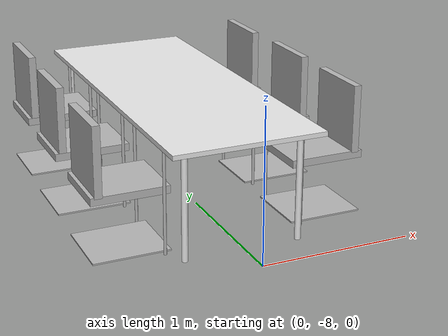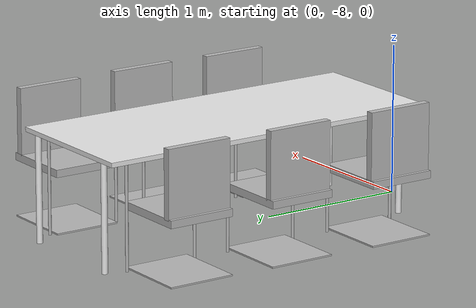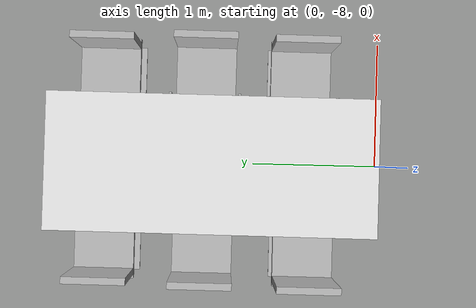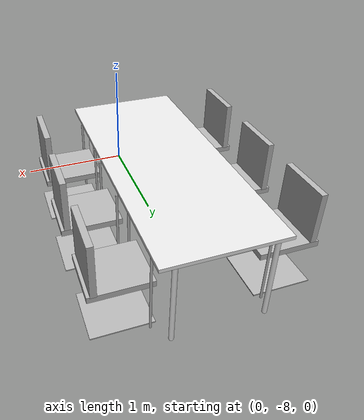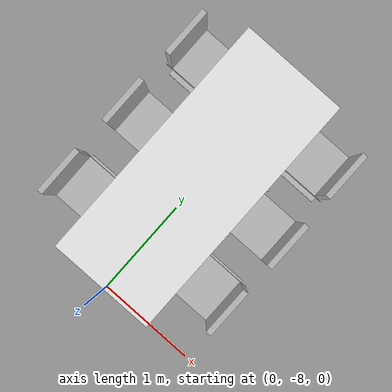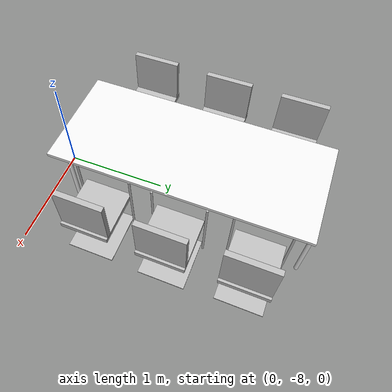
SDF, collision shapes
<sdf version="1.6">
 <model name="erica">
  <model name="table1_chair_tv_clone_clone">
   <model name="h_chair">
    <link name="link_0">
     <inertial>
      <mass>1</mass>
      <inertia>
       <ixx>0.166667</ixx>
       <ixy>0</ixy>
       <ixz>0</ixz>
       <iyy>0.166667</iyy>
       <iyz>0</iyz>
       <izz>0.166667</izz>
      </inertia>
     </inertial>
     <visual name="visual">
      <geometry>
       <mesh><uri>model://erica/elements/h_chair/meshes/chair.dae</uri><scale>1 1 1</scale></mesh>
      </geometry>
     </visual>
     <collision name="collision_4">
      <pose>0 0 0.41 0 -0 0</pose>
      <geometry><box><size>0.5 0.45 0.05</size></box></geometry>
      <surface>
       <friction>
        <ode><mu>1</mu><mu2>1</mu2><fdir1>0 0 0</fdir1><slip1>0</slip1><slip2>0</slip2></ode>
        <torsional>
         <coefficient>1</coefficient>
         <patch_radius>0</patch_radius>
         <surface_radius>0</surface_radius>
         <use_patch_radius>1</use_patch_radius>
         <ode><slip>0</slip></ode>
        </torsional>
       </friction>
       <bounce><restitution_coefficient>0</restitution_coefficient><threshold>1e+06</threshold></bounce>
       <contact>
        <collide_without_contact>0</collide_without_contact>
        <collide_without_contact_bitmask>1</collide_without_contact_bitmask>
        <collide_bitmask>1</collide_bitmask>
        <ode>
         <soft_cfm>0</soft_cfm>
         <soft_erp>0.2</soft_erp>
         <kp>1e+13</kp>
         <kd>1</kd>
         <max_vel>0.01</max_vel>
         <min_depth>0</min_depth>
        </ode>
        <bullet>
         <split_impulse>1</split_impulse>
         <split_impulse_penetration_threshold>-0.01</split_impulse_penetration_threshold>
         <soft_cfm>0</soft_cfm>
         <soft_erp>0.2</soft_erp>
         <kp>1e+13</kp>
         <kd>1</kd>
        </bullet>
       </contact>
      </surface>
     </collision>
     <collision name="collision_3">
      <pose>0 0 0.01 0 -0 0</pose>
      <geometry><box><size>0.5 0.45 0.01</size></box></geometry>
      <surface>
       <friction>
        <ode><mu>1</mu><mu2>1</mu2><fdir1>0 0 0</fdir1><slip1>0</slip1><slip2>0</slip2></ode>
        <torsional>
         <coefficient>1</coefficient>
         <patch_radius>0</patch_radius>
         <surface_radius>0</surface_radius>
         <use_patch_radius>1</use_patch_radius>
         <ode><slip>0</slip></ode>
        </torsional>
       </friction>
       <bounce><restitution_coefficient>0</restitution_coefficient><threshold>1e+06</threshold></bounce>
       <contact>
        <collide_without_contact>0</collide_without_contact>
        <collide_without_contact_bitmask>1</collide_without_contact_bitmask>
        <collide_bitmask>1</collide_bitmask>
        <ode>
         <soft_cfm>0</soft_cfm>
         <soft_erp>0.2</soft_erp>
         <kp>1e+13</kp>
         <kd>1</kd>
         <max_vel>0.01</max_vel>
         <min_depth>0</min_depth>
        </ode>
        <bullet>
         <split_impulse>1</split_impulse>
         <split_impulse_penetration_threshold>-0.01</split_impulse_penetration_threshold>
         <soft_cfm>0</soft_cfm>
         <soft_erp>0.2</soft_erp>
         <kp>1e+13</kp>
         <kd>1</kd>
        </bullet>
       </contact>
      </surface>
     </collision>
     <collision name="collision_5">
      <pose>-0.2 0 0.65 0 -0 0</pose>
      <geometry><box><size>0.05 0.45 0.45</size></box></geometry>
      <surface>
       <friction>
        <ode><mu>1</mu><mu2>1</mu2><fdir1>0 0 0</fdir1><slip1>0</slip1><slip2>0</slip2></ode>
        <torsional>
         <coefficient>1</coefficient>
         <patch_radius>0</patch_radius>
         <surface_radius>0</surface_radius>
         <use_patch_radius>1</use_patch_radius>
         <ode><slip>0</slip></ode>
        </torsional>
       </friction>
       <bounce><restitution_coefficient>0</restitution_coefficient><threshold>1e+06</threshold></bounce>
       <contact>
        <collide_without_contact>0</collide_without_contact>
        <collide_without_contact_bitmask>1</collide_without_contact_bitmask>
        <collide_bitmask>1</collide_bitmask>
        <ode>
         <soft_cfm>0</soft_cfm>
         <soft_erp>0.2</soft_erp>
         <kp>1e+13</kp>
         <kd>1</kd>
         <max_vel>0.01</max_vel>
         <min_depth>0</min_depth>
        </ode>
        <bullet>
         <split_impulse>1</split_impulse>
         <split_impulse_penetration_threshold>-0.01</split_impulse_penetration_threshold>
         <soft_cfm>0</soft_cfm>
         <soft_erp>0.2</soft_erp>
         <kp>1e+13</kp>
         <kd>1</kd>
        </bullet>
       </contact>
      </surface>
     </collision>
     <collision name="collision_6">
      <pose>0.2 -0.25 0.35 0 -0 0</pose>
      <geometry><cylinder><radius>0.01</radius><length>0.7</length></cylinder></geometry>
      <surface>
       <friction>
        <ode><mu>1</mu><mu2>1</mu2><fdir1>0 0 0</fdir1><slip1>0</slip1><slip2>0</slip2></ode>
        <torsional>
         <coefficient>1</coefficient>
         <patch_radius>0</patch_radius>
         <surface_radius>0</surface_radius>
         <use_patch_radius>1</use_patch_radius>
         <ode><slip>0</slip></ode>
        </torsional>
       </friction>
       <bounce><restitution_coefficient>0</restitution_coefficient><threshold>1e+06</threshold></bounce>
       <contact>
        <collide_without_contact>0</collide_without_contact>
        <collide_without_contact_bitmask>1</collide_without_contact_bitmask>
        <collide_bitmask>1</collide_bitmask>
        <ode>
         <soft_cfm>0</soft_cfm>
         <soft_erp>0.2</soft_erp>
         <kp>1e+13</kp>
         <kd>1</kd>
         <max_vel>0.01</max_vel>
         <min_depth>0</min_depth>
        </ode>
        <bullet>
         <split_impulse>1</split_impulse>
         <split_impulse_penetration_threshold>-0.01</split_impulse_penetration_threshold>
         <soft_cfm>0</soft_cfm>
         <soft_erp>0.2</soft_erp>
         <kp>1e+13</kp>
         <kd>1</kd>
        </bullet>
       </contact>
      </surface>
     </collision>
     <collision name="collision_7">
      <pose>0.2 0.25 0.35 0 -0 0</pose>
      <geometry><cylinder><radius>0.01</radius><length>0.7</length></cylinder></geometry>
      <surface>
       <friction>
        <ode><mu>1</mu><mu2>1</mu2><fdir1>0 0 0</fdir1><slip1>0</slip1><slip2>0</slip2></ode>
        <torsional>
         <coefficient>1</coefficient>
         <patch_radius>0</patch_radius>
         <surface_radius>0</surface_radius>
         <use_patch_radius>1</use_patch_radius>
         <ode><slip>0</slip></ode>
        </torsional>
       </friction>
       <bounce><restitution_coefficient>0</restitution_coefficient><threshold>1e+06</threshold></bounce>
       <contact>
        <collide_without_contact>0</collide_without_contact>
        <collide_without_contact_bitmask>1</collide_without_contact_bitmask>
        <collide_bitmask>1</collide_bitmask>
        <ode>
         <soft_cfm>0</soft_cfm>
         <soft_erp>0.2</soft_erp>
         <kp>1e+13</kp>
         <kd>1</kd>
         <max_vel>0.01</max_vel>
         <min_depth>0</min_depth>
        </ode>
        <bullet>
         <split_impulse>1</split_impulse>
         <split_impulse_penetration_threshold>-0.01</split_impulse_penetration_threshold>
         <soft_cfm>0</soft_cfm>
         <soft_erp>0.2</soft_erp>
         <kp>1e+13</kp>
         <kd>1</kd>
        </bullet>
       </contact>
      </surface>
     </collision>
    </link>
    <static>1</static>
    <pose>-0.65015 0.677818 0 0 -0 0</pose>
   </model>
   <model name="h_chair_clone">
    <link name="link_0">
     <inertial>
      <mass>1</mass>
      <inertia>
       <ixx>0.166667</ixx>
       <ixy>0</ixy>
       <ixz>0</ixz>
       <iyy>0.166667</iyy>
       <iyz>0</iyz>
       <izz>0.166667</izz>
      </inertia>
     </inertial>
     <visual name="visual">
      <geometry>
       <mesh><uri>model://erica/elements/h_chair/meshes/chair.dae</uri><scale>1 1 1</scale></mesh>
      </geometry>
     </visual>
     <collision name="collision_4">
      <pose>0 0 0.41 0 -0 0</pose>
      <geometry><box><size>0.5 0.45 0.05</size></box></geometry>
      <surface>
       <friction>
        <ode><mu>1</mu><mu2>1</mu2><fdir1>0 0 0</fdir1><slip1>0</slip1><slip2>0</slip2></ode>
        <torsional>
         <coefficient>1</coefficient>
         <patch_radius>0</patch_radius>
         <surface_radius>0</surface_radius>
         <use_patch_radius>1</use_patch_radius>
         <ode><slip>0</slip></ode>
        </torsional>
       </friction>
       <bounce><restitution_coefficient>0</restitution_coefficient><threshold>1e+06</threshold></bounce>
       <contact>
        <collide_without_contact>0</collide_without_contact>
        <collide_without_contact_bitmask>1</collide_without_contact_bitmask>
        <collide_bitmask>1</collide_bitmask>
        <ode>
         <soft_cfm>0</soft_cfm>
         <soft_erp>0.2</soft_erp>
         <kp>1e+13</kp>
         <kd>1</kd>
         <max_vel>0.01</max_vel>
         <min_depth>0</min_depth>
        </ode>
        <bullet>
         <split_impulse>1</split_impulse>
         <split_impulse_penetration_threshold>-0.01</split_impulse_penetration_threshold>
         <soft_cfm>0</soft_cfm>
         <soft_erp>0.2</soft_erp>
         <kp>1e+13</kp>
         <kd>1</kd>
        </bullet>
       </contact>
      </surface>
     </collision>
     <collision name="collision_3">
      <pose>0 0 0.01 0 -0 0</pose>
      <geometry><box><size>0.5 0.45 0.01</size></box></geometry>
      <surface>
       <friction>
        <ode><mu>1</mu><mu2>1</mu2><fdir1>0 0 0</fdir1><slip1>0</slip1><slip2>0</slip2></ode>
        <torsional>
         <coefficient>1</coefficient>
         <patch_radius>0</patch_radius>
         <surface_radius>0</surface_radius>
         <use_patch_radius>1</use_patch_radius>
         <ode><slip>0</slip></ode>
        </torsional>
       </friction>
       <bounce><restitution_coefficient>0</restitution_coefficient><threshold>1e+06</threshold></bounce>
       <contact>
        <collide_without_contact>0</collide_without_contact>
        <collide_without_contact_bitmask>1</collide_without_contact_bitmask>
        <collide_bitmask>1</collide_bitmask>
        <ode>
         <soft_cfm>0</soft_cfm>
         <soft_erp>0.2</soft_erp>
         <kp>1e+13</kp>
         <kd>1</kd>
         <max_vel>0.01</max_vel>
         <min_depth>0</min_depth>
        </ode>
        <bullet>
         <split_impulse>1</split_impulse>
         <split_impulse_penetration_threshold>-0.01</split_impulse_penetration_threshold>
         <soft_cfm>0</soft_cfm>
         <soft_erp>0.2</soft_erp>
         <kp>1e+13</kp>
         <kd>1</kd>
        </bullet>
       </contact>
      </surface>
     </collision>
     <collision name="collision_5">
      <pose>-0.2 0 0.65 0 -0 0</pose>
      <geometry><box><size>0.05 0.45 0.45</size></box></geometry>
      <surface>
       <friction>
        <ode><mu>1</mu><mu2>1</mu2><fdir1>0 0 0</fdir1><slip1>0</slip1><slip2>0</slip2></ode>
        <torsional>
         <coefficient>1</coefficient>
         <patch_radius>0</patch_radius>
         <surface_radius>0</surface_radius>
         <use_patch_radius>1</use_patch_radius>
         <ode><slip>0</slip></ode>
        </torsional>
       </friction>
       <bounce><restitution_coefficient>0</restitution_coefficient><threshold>1e+06</threshold></bounce>
       <contact>
        <collide_without_contact>0</collide_without_contact>
        <collide_without_contact_bitmask>1</collide_without_contact_bitmask>
        <collide_bitmask>1</collide_bitmask>
        <ode>
         <soft_cfm>0</soft_cfm>
         <soft_erp>0.2</soft_erp>
         <kp>1e+13</kp>
         <kd>1</kd>
         <max_vel>0.01</max_vel>
         <min_depth>0</min_depth>
        </ode>
        <bullet>
         <split_impulse>1</split_impulse>
         <split_impulse_penetration_threshold>-0.01</split_impulse_penetration_threshold>
         <soft_cfm>0</soft_cfm>
         <soft_erp>0.2</soft_erp>
         <kp>1e+13</kp>
         <kd>1</kd>
        </bullet>
       </contact>
      </surface>
     </collision>
     <collision name="collision_6">
      <pose>0.2 -0.25 0.35 0 -0 0</pose>
      <geometry><cylinder><radius>0.01</radius><length>0.7</length></cylinder></geometry>
      <surface>
       <friction>
        <ode><mu>1</mu><mu2>1</mu2><fdir1>0 0 0</fdir1><slip1>0</slip1><slip2>0</slip2></ode>
        <torsional>
         <coefficient>1</coefficient>
         <patch_radius>0</patch_radius>
         <surface_radius>0</surface_radius>
         <use_patch_radius>1</use_patch_radius>
         <ode><slip>0</slip></ode>
        </torsional>
       </friction>
       <bounce><restitution_coefficient>0</restitution_coefficient><threshold>1e+06</threshold></bounce>
       <contact>
        <collide_without_contact>0</collide_without_contact>
        <collide_without_contact_bitmask>1</collide_without_contact_bitmask>
        <collide_bitmask>1</collide_bitmask>
        <ode>
         <soft_cfm>0</soft_cfm>
         <soft_erp>0.2</soft_erp>
         <kp>1e+13</kp>
         <kd>1</kd>
         <max_vel>0.01</max_vel>
         <min_depth>0</min_depth>
        </ode>
        <bullet>
         <split_impulse>1</split_impulse>
         <split_impulse_penetration_threshold>-0.01</split_impulse_penetration_threshold>
         <soft_cfm>0</soft_cfm>
         <soft_erp>0.2</soft_erp>
         <kp>1e+13</kp>
         <kd>1</kd>
        </bullet>
       </contact>
      </surface>
     </collision>
     <collision name="collision_7">
      <pose>0.2 0.25 0.35 0 -0 0</pose>
      <geometry><cylinder><radius>0.01</radius><length>0.7</length></cylinder></geometry>
      <surface>
       <friction>
        <ode><mu>1</mu><mu2>1</mu2><fdir1>0 0 0</fdir1><slip1>0</slip1><slip2>0</slip2></ode>
        <torsional>
         <coefficient>1</coefficient>
         <patch_radius>0</patch_radius>
         <surface_radius>0</surface_radius>
         <use_patch_radius>1</use_patch_radius>
         <ode><slip>0</slip></ode>
        </torsional>
       </friction>
       <bounce><restitution_coefficient>0</restitution_coefficient><threshold>1e+06</threshold></bounce>
       <contact>
        <collide_without_contact>0</collide_without_contact>
        <collide_without_contact_bitmask>1</collide_without_contact_bitmask>
        <collide_bitmask>1</collide_bitmask>
        <ode>
         <soft_cfm>0</soft_cfm>
         <soft_erp>0.2</soft_erp>
         <kp>1e+13</kp>
         <kd>1</kd>
         <max_vel>0.01</max_vel>
         <min_depth>0</min_depth>
        </ode>
        <bullet>
         <split_impulse>1</split_impulse>
         <split_impulse_penetration_threshold>-0.01</split_impulse_penetration_threshold>
         <soft_cfm>0</soft_cfm>
         <soft_erp>0.2</soft_erp>
         <kp>1e+13</kp>
         <kd>1</kd>
        </bullet>
       </contact>
      </surface>
     </collision>
    </link>
    <static>1</static>
    <pose>-0.668032 -0.060178 0 0 -0 0</pose>
   </model>
   <model name="h_chair_clone_0">
    <link name="link_0">
     <inertial>
      <mass>1</mass>
      <inertia>
       <ixx>0.166667</ixx>
       <ixy>0</ixy>
       <ixz>0</ixz>
       <iyy>0.166667</iyy>
       <iyz>0</iyz>
       <izz>0.166667</izz>
      </inertia>
     </inertial>
     <visual name="visual">
      <geometry>
       <mesh><uri>model://erica/elements/h_chair/meshes/chair.dae</uri><scale>1 1 1</scale></mesh>
      </geometry>
     </visual>
     <collision name="collision_4">
      <pose>0 0 0.41 0 -0 0</pose>
      <geometry><box><size>0.5 0.45 0.05</size></box></geometry>
      <surface>
       <friction>
        <ode><mu>1</mu><mu2>1</mu2><fdir1>0 0 0</fdir1><slip1>0</slip1><slip2>0</slip2></ode>
        <torsional>
         <coefficient>1</coefficient>
         <patch_radius>0</patch_radius>
         <surface_radius>0</surface_radius>
         <use_patch_radius>1</use_patch_radius>
         <ode><slip>0</slip></ode>
        </torsional>
       </friction>
       <bounce><restitution_coefficient>0</restitution_coefficient><threshold>1e+06</threshold></bounce>
       <contact>
        <collide_without_contact>0</collide_without_contact>
        <collide_without_contact_bitmask>1</collide_without_contact_bitmask>
        <collide_bitmask>1</collide_bitmask>
        <ode>
         <soft_cfm>0</soft_cfm>
         <soft_erp>0.2</soft_erp>
         <kp>1e+13</kp>
         <kd>1</kd>
         <max_vel>0.01</max_vel>
         <min_depth>0</min_depth>
        </ode>
        <bullet>
         <split_impulse>1</split_impulse>
         <split_impulse_penetration_threshold>-0.01</split_impulse_penetration_threshold>
         <soft_cfm>0</soft_cfm>
         <soft_erp>0.2</soft_erp>
         <kp>1e+13</kp>
         <kd>1</kd>
        </bullet>
       </contact>
      </surface>
     </collision>
     <collision name="collision_3">
      <pose>0 0 0.01 0 -0 0</pose>
      <geometry><box><size>0.5 0.45 0.01</size></box></geometry>
      <surface>
       <friction>
        <ode><mu>1</mu><mu2>1</mu2><fdir1>0 0 0</fdir1><slip1>0</slip1><slip2>0</slip2></ode>
        <torsional>
         <coefficient>1</coefficient>
         <patch_radius>0</patch_radius>
         <surface_radius>0</surface_radius>
         <use_patch_radius>1</use_patch_radius>
         <ode><slip>0</slip></ode>
        </torsional>
       </friction>
       <bounce><restitution_coefficient>0</restitution_coefficient><threshold>1e+06</threshold></bounce>
       <contact>
        <collide_without_contact>0</collide_without_contact>
        <collide_without_contact_bitmask>1</collide_without_contact_bitmask>
        <collide_bitmask>1</collide_bitmask>
        <ode>
         <soft_cfm>0</soft_cfm>
         <soft_erp>0.2</soft_erp>
         <kp>1e+13</kp>
         <kd>1</kd>
         <max_vel>0.01</max_vel>
         <min_depth>0</min_depth>
        </ode>
        <bullet>
         <split_impulse>1</split_impulse>
         <split_impulse_penetration_threshold>-0.01</split_impulse_penetration_threshold>
         <soft_cfm>0</soft_cfm>
         <soft_erp>0.2</soft_erp>
         <kp>1e+13</kp>
         <kd>1</kd>
        </bullet>
       </contact>
      </surface>
     </collision>
     <collision name="collision_5">
      <pose>-0.2 0 0.65 0 -0 0</pose>
      <geometry><box><size>0.05 0.45 0.45</size></box></geometry>
      <surface>
       <friction>
        <ode><mu>1</mu><mu2>1</mu2><fdir1>0 0 0</fdir1><slip1>0</slip1><slip2>0</slip2></ode>
        <torsional>
         <coefficient>1</coefficient>
         <patch_radius>0</patch_radius>
         <surface_radius>0</surface_radius>
         <use_patch_radius>1</use_patch_radius>
         <ode><slip>0</slip></ode>
        </torsional>
       </friction>
       <bounce><restitution_coefficient>0</restitution_coefficient><threshold>1e+06</threshold></bounce>
       <contact>
        <collide_without_contact>0</collide_without_contact>
        <collide_without_contact_bitmask>1</collide_without_contact_bitmask>
        <collide_bitmask>1</collide_bitmask>
        <ode>
         <soft_cfm>0</soft_cfm>
         <soft_erp>0.2</soft_erp>
         <kp>1e+13</kp>
         <kd>1</kd>
         <max_vel>0.01</max_vel>
         <min_depth>0</min_depth>
        </ode>
        <bullet>
         <split_impulse>1</split_impulse>
         <split_impulse_penetration_threshold>-0.01</split_impulse_penetration_threshold>
         <soft_cfm>0</soft_cfm>
         <soft_erp>0.2</soft_erp>
         <kp>1e+13</kp>
         <kd>1</kd>
        </bullet>
       </contact>
      </surface>
     </collision>
     <collision name="collision_6">
      <pose>0.2 -0.25 0.35 0 -0 0</pose>
      <geometry><cylinder><radius>0.01</radius><length>0.7</length></cylinder></geometry>
      <surface>
       <friction>
        <ode><mu>1</mu><mu2>1</mu2><fdir1>0 0 0</fdir1><slip1>0</slip1><slip2>0</slip2></ode>
        <torsional>
         <coefficient>1</coefficient>
         <patch_radius>0</patch_radius>
         <surface_radius>0</surface_radius>
         <use_patch_radius>1</use_patch_radius>
         <ode><slip>0</slip></ode>
        </torsional>
       </friction>
       <bounce><restitution_coefficient>0</restitution_coefficient><threshold>1e+06</threshold></bounce>
       <contact>
        <collide_without_contact>0</collide_without_contact>
        <collide_without_contact_bitmask>1</collide_without_contact_bitmask>
        <collide_bitmask>1</collide_bitmask>
        <ode>
         <soft_cfm>0</soft_cfm>
         <soft_erp>0.2</soft_erp>
         <kp>1e+13</kp>
         <kd>1</kd>
         <max_vel>0.01</max_vel>
         <min_depth>0</min_depth>
        </ode>
        <bullet>
         <split_impulse>1</split_impulse>
         <split_impulse_penetration_threshold>-0.01</split_impulse_penetration_threshold>
         <soft_cfm>0</soft_cfm>
         <soft_erp>0.2</soft_erp>
         <kp>1e+13</kp>
         <kd>1</kd>
        </bullet>
       </contact>
      </surface>
     </collision>
     <collision name="collision_7">
      <pose>0.2 0.25 0.35 0 -0 0</pose>
      <geometry><cylinder><radius>0.01</radius><length>0.7</length></cylinder></geometry>
      <surface>
       <friction>
        <ode><mu>1</mu><mu2>1</mu2><fdir1>0 0 0</fdir1><slip1>0</slip1><slip2>0</slip2></ode>
        <torsional>
         <coefficient>1</coefficient>
         <patch_radius>0</patch_radius>
         <surface_radius>0</surface_radius>
         <use_patch_radius>1</use_patch_radius>
         <ode><slip>0</slip></ode>
        </torsional>
       </friction>
       <bounce><restitution_coefficient>0</restitution_coefficient><threshold>1e+06</threshold></bounce>
       <contact>
        <collide_without_contact>0</collide_without_contact>
        <collide_without_contact_bitmask>1</collide_without_contact_bitmask>
        <collide_bitmask>1</collide_bitmask>
        <ode>
         <soft_cfm>0</soft_cfm>
         <soft_erp>0.2</soft_erp>
         <kp>1e+13</kp>
         <kd>1</kd>
         <max_vel>0.01</max_vel>
         <min_depth>0</min_depth>
        </ode>
        <bullet>
         <split_impulse>1</split_impulse>
         <split_impulse_penetration_threshold>-0.01</split_impulse_penetration_threshold>
         <soft_cfm>0</soft_cfm>
         <soft_erp>0.2</soft_erp>
         <kp>1e+13</kp>
         <kd>1</kd>
        </bullet>
       </contact>
      </surface>
     </collision>
    </link>
    <static>1</static>
    <pose>-0.679941 -0.822301 0 0 -0 0</pose>
   </model>
   <model name="h_chair_clone_1">
    <link name="link_0">
     <inertial>
      <mass>1</mass>
      <inertia>
       <ixx>0.166667</ixx>
       <ixy>0</ixy>
       <ixz>0</ixz>
       <iyy>0.166667</iyy>
       <iyz>0</iyz>
       <izz>0.166667</izz>
      </inertia>
     </inertial>
     <visual name="visual">
      <geometry>
       <mesh><uri>model://erica/elements/h_chair/meshes/chair.dae</uri><scale>1 1 1</scale></mesh>
      </geometry>
     </visual>
     <collision name="collision_4">
      <pose>0 0 0.41 0 -0 0</pose>
      <geometry><box><size>0.5 0.45 0.05</size></box></geometry>
      <surface>
       <friction>
        <ode><mu>1</mu><mu2>1</mu2><fdir1>0 0 0</fdir1><slip1>0</slip1><slip2>0</slip2></ode>
        <torsional>
         <coefficient>1</coefficient>
         <patch_radius>0</patch_radius>
         <surface_radius>0</surface_radius>
         <use_patch_radius>1</use_patch_radius>
         <ode><slip>0</slip></ode>
        </torsional>
       </friction>
       <bounce><restitution_coefficient>0</restitution_coefficient><threshold>1e+06</threshold></bounce>
       <contact>
        <collide_without_contact>0</collide_without_contact>
        <collide_without_contact_bitmask>1</collide_without_contact_bitmask>
        <collide_bitmask>1</collide_bitmask>
        <ode>
         <soft_cfm>0</soft_cfm>
         <soft_erp>0.2</soft_erp>
         <kp>1e+13</kp>
         <kd>1</kd>
         <max_vel>0.01</max_vel>
         <min_depth>0</min_depth>
        </ode>
        <bullet>
         <split_impulse>1</split_impulse>
         <split_impulse_penetration_threshold>-0.01</split_impulse_penetration_threshold>
         <soft_cfm>0</soft_cfm>
         <soft_erp>0.2</soft_erp>
         <kp>1e+13</kp>
         <kd>1</kd>
        </bullet>
       </contact>
      </surface>
     </collision>
     <collision name="collision_3">
      <pose>0 0 0.01 0 -0 0</pose>
      <geometry><box><size>0.5 0.45 0.01</size></box></geometry>
      <surface>
       <friction>
        <ode><mu>1</mu><mu2>1</mu2><fdir1>0 0 0</fdir1><slip1>0</slip1><slip2>0</slip2></ode>
        <torsional>
         <coefficient>1</coefficient>
         <patch_radius>0</patch_radius>
         <surface_radius>0</surface_radius>
         <use_patch_radius>1</use_patch_radius>
         <ode><slip>0</slip></ode>
        </torsional>
       </friction>
       <bounce><restitution_coefficient>0</restitution_coefficient><threshold>1e+06</threshold></bounce>
       <contact>
        <collide_without_contact>0</collide_without_contact>
        <collide_without_contact_bitmask>1</collide_without_contact_bitmask>
        <collide_bitmask>1</collide_bitmask>
        <ode>
         <soft_cfm>0</soft_cfm>
         <soft_erp>0.2</soft_erp>
         <kp>1e+13</kp>
         <kd>1</kd>
         <max_vel>0.01</max_vel>
         <min_depth>0</min_depth>
        </ode>
        <bullet>
         <split_impulse>1</split_impulse>
         <split_impulse_penetration_threshold>-0.01</split_impulse_penetration_threshold>
         <soft_cfm>0</soft_cfm>
         <soft_erp>0.2</soft_erp>
         <kp>1e+13</kp>
         <kd>1</kd>
        </bullet>
       </contact>
      </surface>
     </collision>
     <collision name="collision_5">
      <pose>-0.2 0 0.65 0 -0 0</pose>
      <geometry><box><size>0.05 0.45 0.45</size></box></geometry>
      <surface>
       <friction>
        <ode><mu>1</mu><mu2>1</mu2><fdir1>0 0 0</fdir1><slip1>0</slip1><slip2>0</slip2></ode>
        <torsional>
         <coefficient>1</coefficient>
         <patch_radius>0</patch_radius>
         <surface_radius>0</surface_radius>
         <use_patch_radius>1</use_patch_radius>
         <ode><slip>0</slip></ode>
        </torsional>
       </friction>
       <bounce><restitution_coefficient>0</restitution_coefficient><threshold>1e+06</threshold></bounce>
       <contact>
        <collide_without_contact>0</collide_without_contact>
        <collide_without_contact_bitmask>1</collide_without_contact_bitmask>
        <collide_bitmask>1</collide_bitmask>
        <ode>
         <soft_cfm>0</soft_cfm>
         <soft_erp>0.2</soft_erp>
         <kp>1e+13</kp>
         <kd>1</kd>
         <max_vel>0.01</max_vel>
         <min_depth>0</min_depth>
        </ode>
        <bullet>
         <split_impulse>1</split_impulse>
         <split_impulse_penetration_threshold>-0.01</split_impulse_penetration_threshold>
         <soft_cfm>0</soft_cfm>
         <soft_erp>0.2</soft_erp>
         <kp>1e+13</kp>
         <kd>1</kd>
        </bullet>
       </contact>
      </surface>
     </collision>
     <collision name="collision_6">
      <pose>0.2 -0.25 0.35 0 -0 0</pose>
      <geometry><cylinder><radius>0.01</radius><length>0.7</length></cylinder></geometry>
      <surface>
       <friction>
        <ode><mu>1</mu><mu2>1</mu2><fdir1>0 0 0</fdir1><slip1>0</slip1><slip2>0</slip2></ode>
        <torsional>
         <coefficient>1</coefficient>
         <patch_radius>0</patch_radius>
         <surface_radius>0</surface_radius>
         <use_patch_radius>1</use_patch_radius>
         <ode><slip>0</slip></ode>
        </torsional>
       </friction>
       <bounce><restitution_coefficient>0</restitution_coefficient><threshold>1e+06</threshold></bounce>
       <contact>
        <collide_without_contact>0</collide_without_contact>
        <collide_without_contact_bitmask>1</collide_without_contact_bitmask>
        <collide_bitmask>1</collide_bitmask>
        <ode>
         <soft_cfm>0</soft_cfm>
         <soft_erp>0.2</soft_erp>
         <kp>1e+13</kp>
         <kd>1</kd>
         <max_vel>0.01</max_vel>
         <min_depth>0</min_depth>
        </ode>
        <bullet>
         <split_impulse>1</split_impulse>
         <split_impulse_penetration_threshold>-0.01</split_impulse_penetration_threshold>
         <soft_cfm>0</soft_cfm>
         <soft_erp>0.2</soft_erp>
         <kp>1e+13</kp>
         <kd>1</kd>
        </bullet>
       </contact>
      </surface>
     </collision>
     <collision name="collision_7">
      <pose>0.2 0.25 0.35 0 -0 0</pose>
      <geometry><cylinder><radius>0.01</radius><length>0.7</length></cylinder></geometry>
      <surface>
       <friction>
        <ode><mu>1</mu><mu2>1</mu2><fdir1>0 0 0</fdir1><slip1>0</slip1><slip2>0</slip2></ode>
        <torsional>
         <coefficient>1</coefficient>
         <patch_radius>0</patch_radius>
         <surface_radius>0</surface_radius>
         <use_patch_radius>1</use_patch_radius>
         <ode><slip>0</slip></ode>
        </torsional>
       </friction>
       <bounce><restitution_coefficient>0</restitution_coefficient><threshold>1e+06</threshold></bounce>
       <contact>
        <collide_without_contact>0</collide_without_contact>
        <collide_without_contact_bitmask>1</collide_without_contact_bitmask>
        <collide_bitmask>1</collide_bitmask>
        <ode>
         <soft_cfm>0</soft_cfm>
         <soft_erp>0.2</soft_erp>
         <kp>1e+13</kp>
         <kd>1</kd>
         <max_vel>0.01</max_vel>
         <min_depth>0</min_depth>
        </ode>
        <bullet>
         <split_impulse>1</split_impulse>
         <split_impulse_penetration_threshold>-0.01</split_impulse_penetration_threshold>
         <soft_cfm>0</soft_cfm>
         <soft_erp>0.2</soft_erp>
         <kp>1e+13</kp>
         <kd>1</kd>
        </bullet>
       </contact>
      </surface>
     </collision>
    </link>
    <static>1</static>
    <pose>0.664034 0.665185 0 0 -0 3.13853</pose>
   </model>
   <model name="h_chair_clone_1_clone">
    <link name="link_0">
     <inertial>
      <mass>1</mass>
      <inertia>
       <ixx>0.166667</ixx>
       <ixy>0</ixy>
       <ixz>0</ixz>
       <iyy>0.166667</iyy>
       <iyz>0</iyz>
       <izz>0.166667</izz>
      </inertia>
     </inertial>
     <visual name="visual">
      <geometry>
       <mesh><uri>model://erica/elements/h_chair/meshes/chair.dae</uri><scale>1 1 1</scale></mesh>
      </geometry>
     </visual>
     <collision name="collision_4">
      <pose>0 0 0.41 0 -0 0</pose>
      <geometry><box><size>0.5 0.45 0.05</size></box></geometry>
      <surface>
       <friction>
        <ode><mu>1</mu><mu2>1</mu2><fdir1>0 0 0</fdir1><slip1>0</slip1><slip2>0</slip2></ode>
        <torsional>
         <coefficient>1</coefficient>
         <patch_radius>0</patch_radius>
         <surface_radius>0</surface_radius>
         <use_patch_radius>1</use_patch_radius>
         <ode><slip>0</slip></ode>
        </torsional>
       </friction>
       <bounce><restitution_coefficient>0</restitution_coefficient><threshold>1e+06</threshold></bounce>
       <contact>
        <collide_without_contact>0</collide_without_contact>
        <collide_without_contact_bitmask>1</collide_without_contact_bitmask>
        <collide_bitmask>1</collide_bitmask>
        <ode>
         <soft_cfm>0</soft_cfm>
         <soft_erp>0.2</soft_erp>
         <kp>1e+13</kp>
         <kd>1</kd>
         <max_vel>0.01</max_vel>
         <min_depth>0</min_depth>
        </ode>
        <bullet>
         <split_impulse>1</split_impulse>
         <split_impulse_penetration_threshold>-0.01</split_impulse_penetration_threshold>
         <soft_cfm>0</soft_cfm>
         <soft_erp>0.2</soft_erp>
         <kp>1e+13</kp>
         <kd>1</kd>
        </bullet>
       </contact>
      </surface>
     </collision>
     <collision name="collision_3">
      <pose>0 0 0.01 0 -0 0</pose>
      <geometry><box><size>0.5 0.45 0.01</size></box></geometry>
      <surface>
       <friction>
        <ode><mu>1</mu><mu2>1</mu2><fdir1>0 0 0</fdir1><slip1>0</slip1><slip2>0</slip2></ode>
        <torsional>
         <coefficient>1</coefficient>
         <patch_radius>0</patch_radius>
         <surface_radius>0</surface_radius>
         <use_patch_radius>1</use_patch_radius>
         <ode><slip>0</slip></ode>
        </torsional>
       </friction>
       <bounce><restitution_coefficient>0</restitution_coefficient><threshold>1e+06</threshold></bounce>
       <contact>
        <collide_without_contact>0</collide_without_contact>
        <collide_without_contact_bitmask>1</collide_without_contact_bitmask>
        <collide_bitmask>1</collide_bitmask>
        <ode>
         <soft_cfm>0</soft_cfm>
         <soft_erp>0.2</soft_erp>
         <kp>1e+13</kp>
         <kd>1</kd>
         <max_vel>0.01</max_vel>
         <min_depth>0</min_depth>
        </ode>
        <bullet>
         <split_impulse>1</split_impulse>
         <split_impulse_penetration_threshold>-0.01</split_impulse_penetration_threshold>
         <soft_cfm>0</soft_cfm>
         <soft_erp>0.2</soft_erp>
         <kp>1e+13</kp>
         <kd>1</kd>
        </bullet>
       </contact>
      </surface>
     </collision>
     <collision name="collision_5">
      <pose>-0.2 0 0.65 0 -0 0</pose>
      <geometry><box><size>0.05 0.45 0.45</size></box></geometry>
      <surface>
       <friction>
        <ode><mu>1</mu><mu2>1</mu2><fdir1>0 0 0</fdir1><slip1>0</slip1><slip2>0</slip2></ode>
        <torsional>
         <coefficient>1</coefficient>
         <patch_radius>0</patch_radius>
         <surface_radius>0</surface_radius>
         <use_patch_radius>1</use_patch_radius>
         <ode><slip>0</slip></ode>
        </torsional>
       </friction>
       <bounce><restitution_coefficient>0</restitution_coefficient><threshold>1e+06</threshold></bounce>
       <contact>
        <collide_without_contact>0</collide_without_contact>
        <collide_without_contact_bitmask>1</collide_without_contact_bitmask>
        <collide_bitmask>1</collide_bitmask>
        <ode>
         <soft_cfm>0</soft_cfm>
         <soft_erp>0.2</soft_erp>
         <kp>1e+13</kp>
         <kd>1</kd>
         <max_vel>0.01</max_vel>
         <min_depth>0</min_depth>
        </ode>
        <bullet>
         <split_impulse>1</split_impulse>
         <split_impulse_penetration_threshold>-0.01</split_impulse_penetration_threshold>
         <soft_cfm>0</soft_cfm>
         <soft_erp>0.2</soft_erp>
         <kp>1e+13</kp>
         <kd>1</kd>
        </bullet>
       </contact>
      </surface>
     </collision>
     <collision name="collision_6">
      <pose>0.2 -0.25 0.35 0 -0 0</pose>
      <geometry><cylinder><radius>0.01</radius><length>0.7</length></cylinder></geometry>
      <surface>
       <friction>
        <ode><mu>1</mu><mu2>1</mu2><fdir1>0 0 0</fdir1><slip1>0</slip1><slip2>0</slip2></ode>
        <torsional>
         <coefficient>1</coefficient>
         <patch_radius>0</patch_radius>
         <surface_radius>0</surface_radius>
         <use_patch_radius>1</use_patch_radius>
         <ode><slip>0</slip></ode>
        </torsional>
       </friction>
       <bounce><restitution_coefficient>0</restitution_coefficient><threshold>1e+06</threshold></bounce>
       <contact>
        <collide_without_contact>0</collide_without_contact>
        <collide_without_contact_bitmask>1</collide_without_contact_bitmask>
        <collide_bitmask>1</collide_bitmask>
        <ode>
         <soft_cfm>0</soft_cfm>
         <soft_erp>0.2</soft_erp>
         <kp>1e+13</kp>
         <kd>1</kd>
         <max_vel>0.01</max_vel>
         <min_depth>0</min_depth>
        </ode>
        <bullet>
         <split_impulse>1</split_impulse>
         <split_impulse_penetration_threshold>-0.01</split_impulse_penetration_threshold>
         <soft_cfm>0</soft_cfm>
         <soft_erp>0.2</soft_erp>
         <kp>1e+13</kp>
         <kd>1</kd>
        </bullet>
       </contact>
      </surface>
     </collision>
     <collision name="collision_7">
      <pose>0.2 0.25 0.35 0 -0 0</pose>
      <geometry><cylinder><radius>0.01</radius><length>0.7</length></cylinder></geometry>
      <surface>
       <friction>
        <ode><mu>1</mu><mu2>1</mu2><fdir1>0 0 0</fdir1><slip1>0</slip1><slip2>0</slip2></ode>
        <torsional>
         <coefficient>1</coefficient>
         <patch_radius>0</patch_radius>
         <surface_radius>0</surface_radius>
         <use_patch_radius>1</use_patch_radius>
         <ode><slip>0</slip></ode>
        </torsional>
       </friction>
       <bounce><restitution_coefficient>0</restitution_coefficient><threshold>1e+06</threshold></bounce>
       <contact>
        <collide_without_contact>0</collide_without_contact>
        <collide_without_contact_bitmask>1</collide_without_contact_bitmask>
        <collide_bitmask>1</collide_bitmask>
        <ode>
         <soft_cfm>0</soft_cfm>
         <soft_erp>0.2</soft_erp>
         <kp>1e+13</kp>
         <kd>1</kd>
         <max_vel>0.01</max_vel>
         <min_depth>0</min_depth>
        </ode>
        <bullet>
         <split_impulse>1</split_impulse>
         <split_impulse_penetration_threshold>-0.01</split_impulse_penetration_threshold>
         <soft_cfm>0</soft_cfm>
         <soft_erp>0.2</soft_erp>
         <kp>1e+13</kp>
         <kd>1</kd>
        </bullet>
       </contact>
      </surface>
     </collision>
    </link>
    <static>1</static>
    <pose>0.671484 -0.777358 0 0 -0 3.13853</pose>
   </model>
   <model name="h_chair_clone_1_clone_clone">
    <link name="link_0">
     <inertial>
      <mass>1</mass>
      <inertia>
       <ixx>0.166667</ixx>
       <ixy>0</ixy>
       <ixz>0</ixz>
       <iyy>0.166667</iyy>
       <iyz>0</iyz>
       <izz>0.166667</izz>
      </inertia>
     </inertial>
     <visual name="visual">
      <geometry>
       <mesh><uri>model://erica/elements/h_chair/meshes/chair.dae</uri><scale>1 1 1</scale></mesh>
      </geometry>
     </visual>
     <collision name="collision_4">
      <pose>0 0 0.41 0 -0 0</pose>
      <geometry><box><size>0.5 0.45 0.05</size></box></geometry>
      <surface>
       <friction>
        <ode><mu>1</mu><mu2>1</mu2><fdir1>0 0 0</fdir1><slip1>0</slip1><slip2>0</slip2></ode>
        <torsional>
         <coefficient>1</coefficient>
         <patch_radius>0</patch_radius>
         <surface_radius>0</surface_radius>
         <use_patch_radius>1</use_patch_radius>
         <ode><slip>0</slip></ode>
        </torsional>
       </friction>
       <bounce><restitution_coefficient>0</restitution_coefficient><threshold>1e+06</threshold></bounce>
       <contact>
        <collide_without_contact>0</collide_without_contact>
        <collide_without_contact_bitmask>1</collide_without_contact_bitmask>
        <collide_bitmask>1</collide_bitmask>
        <ode>
         <soft_cfm>0</soft_cfm>
         <soft_erp>0.2</soft_erp>
         <kp>1e+13</kp>
         <kd>1</kd>
         <max_vel>0.01</max_vel>
         <min_depth>0</min_depth>
        </ode>
        <bullet>
         <split_impulse>1</split_impulse>
         <split_impulse_penetration_threshold>-0.01</split_impulse_penetration_threshold>
         <soft_cfm>0</soft_cfm>
         <soft_erp>0.2</soft_erp>
         <kp>1e+13</kp>
         <kd>1</kd>
        </bullet>
       </contact>
      </surface>
     </collision>
     <collision name="collision_3">
      <pose>0 0 0.01 0 -0 0</pose>
      <geometry><box><size>0.5 0.45 0.01</size></box></geometry>
      <surface>
       <friction>
        <ode><mu>1</mu><mu2>1</mu2><fdir1>0 0 0</fdir1><slip1>0</slip1><slip2>0</slip2></ode>
        <torsional>
         <coefficient>1</coefficient>
         <patch_radius>0</patch_radius>
         <surface_radius>0</surface_radius>
         <use_patch_radius>1</use_patch_radius>
         <ode><slip>0</slip></ode>
        </torsional>
       </friction>
       <bounce><restitution_coefficient>0</restitution_coefficient><threshold>1e+06</threshold></bounce>
       <contact>
        <collide_without_contact>0</collide_without_contact>
        <collide_without_contact_bitmask>1</collide_without_contact_bitmask>
        <collide_bitmask>1</collide_bitmask>
        <ode>
         <soft_cfm>0</soft_cfm>
         <soft_erp>0.2</soft_erp>
         <kp>1e+13</kp>
         <kd>1</kd>
         <max_vel>0.01</max_vel>
         <min_depth>0</min_depth>
        </ode>
        <bullet>
         <split_impulse>1</split_impulse>
         <split_impulse_penetration_threshold>-0.01</split_impulse_penetration_threshold>
         <soft_cfm>0</soft_cfm>
         <soft_erp>0.2</soft_erp>
         <kp>1e+13</kp>
         <kd>1</kd>
        </bullet>
       </contact>
      </surface>
     </collision>
     <collision name="collision_5">
      <pose>-0.2 0 0.65 0 -0 0</pose>
      <geometry><box><size>0.05 0.45 0.45</size></box></geometry>
      <surface>
       <friction>
        <ode><mu>1</mu><mu2>1</mu2><fdir1>0 0 0</fdir1><slip1>0</slip1><slip2>0</slip2></ode>
        <torsional>
         <coefficient>1</coefficient>
         <patch_radius>0</patch_radius>
         <surface_radius>0</surface_radius>
         <use_patch_radius>1</use_patch_radius>
         <ode><slip>0</slip></ode>
        </torsional>
       </friction>
       <bounce><restitution_coefficient>0</restitution_coefficient><threshold>1e+06</threshold></bounce>
       <contact>
        <collide_without_contact>0</collide_without_contact>
        <collide_without_contact_bitmask>1</collide_without_contact_bitmask>
        <collide_bitmask>1</collide_bitmask>
        <ode>
         <soft_cfm>0</soft_cfm>
         <soft_erp>0.2</soft_erp>
         <kp>1e+13</kp>
         <kd>1</kd>
         <max_vel>0.01</max_vel>
         <min_depth>0</min_depth>
        </ode>
        <bullet>
         <split_impulse>1</split_impulse>
         <split_impulse_penetration_threshold>-0.01</split_impulse_penetration_threshold>
         <soft_cfm>0</soft_cfm>
         <soft_erp>0.2</soft_erp>
         <kp>1e+13</kp>
         <kd>1</kd>
        </bullet>
       </contact>
      </surface>
     </collision>
     <collision name="collision_6">
      <pose>0.2 -0.25 0.35 0 -0 0</pose>
      <geometry><cylinder><radius>0.01</radius><length>0.7</length></cylinder></geometry>
      <surface>
       <friction>
        <ode><mu>1</mu><mu2>1</mu2><fdir1>0 0 0</fdir1><slip1>0</slip1><slip2>0</slip2></ode>
        <torsional>
         <coefficient>1</coefficient>
         <patch_radius>0</patch_radius>
         <surface_radius>0</surface_radius>
         <use_patch_radius>1</use_patch_radius>
         <ode><slip>0</slip></ode>
        </torsional>
       </friction>
       <bounce><restitution_coefficient>0</restitution_coefficient><threshold>1e+06</threshold></bounce>
       <contact>
        <collide_without_contact>0</collide_without_contact>
        <collide_without_contact_bitmask>1</collide_without_contact_bitmask>
        <collide_bitmask>1</collide_bitmask>
        <ode>
         <soft_cfm>0</soft_cfm>
         <soft_erp>0.2</soft_erp>
         <kp>1e+13</kp>
         <kd>1</kd>
         <max_vel>0.01</max_vel>
         <min_depth>0</min_depth>
        </ode>
        <bullet>
         <split_impulse>1</split_impulse>
         <split_impulse_penetration_threshold>-0.01</split_impulse_penetration_threshold>
         <soft_cfm>0</soft_cfm>
         <soft_erp>0.2</soft_erp>
         <kp>1e+13</kp>
         <kd>1</kd>
        </bullet>
       </contact>
      </surface>
     </collision>
     <collision name="collision_7">
      <pose>0.2 0.25 0.35 0 -0 0</pose>
      <geometry><cylinder><radius>0.01</radius><length>0.7</length></cylinder></geometry>
      <surface>
       <friction>
        <ode><mu>1</mu><mu2>1</mu2><fdir1>0 0 0</fdir1><slip1>0</slip1><slip2>0</slip2></ode>
        <torsional>
         <coefficient>1</coefficient>
         <patch_radius>0</patch_radius>
         <surface_radius>0</surface_radius>
         <use_patch_radius>1</use_patch_radius>
         <ode><slip>0</slip></ode>
        </torsional>
       </friction>
       <bounce><restitution_coefficient>0</restitution_coefficient><threshold>1e+06</threshold></bounce>
       <contact>
        <collide_without_contact>0</collide_without_contact>
        <collide_without_contact_bitmask>1</collide_without_contact_bitmask>
        <collide_bitmask>1</collide_bitmask>
        <ode>
         <soft_cfm>0</soft_cfm>
         <soft_erp>0.2</soft_erp>
         <kp>1e+13</kp>
         <kd>1</kd>
         <max_vel>0.01</max_vel>
         <min_depth>0</min_depth>
        </ode>
        <bullet>
         <split_impulse>1</split_impulse>
         <split_impulse_penetration_threshold>-0.01</split_impulse_penetration_threshold>
         <soft_cfm>0</soft_cfm>
         <soft_erp>0.2</soft_erp>
         <kp>1e+13</kp>
         <kd>1</kd>
        </bullet>
       </contact>
      </surface>
     </collision>
    </link>
    <static>1</static>
    <pose>0.685434 -0.0617 0 0 -0 3.13853</pose>
   </model>
   <model name="h_table">
    <link name="link">
     <inertial>
      <inertia><ixx>1</ixx><ixy>0</ixy><ixz>0</ixz><iyy>1</iyy><iyz>0</iyz><izz>1</izz></inertia>
      <mass>1</mass>
     </inertial>
     <visual name="visual1">
      <pose>-0.5 0 0.72 0 -0 0</pose>
      <geometry><box><size>2.4 1 0.04</size></box></geometry>
      <material>
       <script><uri>file://media/materials/scripts/gazebo.material</uri><name>Gazebo/White</name></script>
       <ambient>1 1 1 1</ambient>
       <diffuse>1 1 1 1</diffuse>
       <specular>0.2 0.2 0.2 1</specular>
       <emissive>0 0 0 1</emissive>
       <shader type="vertex"><normal_map>__default__</normal_map></shader>
      </material>
     </visual>
     <visual name="front_right_leg">
      <pose>0.68 -0.38 0.36 0 -0 0</pose>
      <geometry><cylinder><radius>0.02</radius><length>0.72</length></cylinder></geometry>
      <material>
       <script><uri>file://media/materials/scripts/gazebo.material</uri><name>Gazebo/White</name></script>
       <ambient>0.3 0.3 0.3 1</ambient>
       <diffuse>0.7 0.7 0.7 1</diffuse>
       <specular>0.01 0.01 0.01 1</specular>
       <emissive>0 0 0 1</emissive>
       <shader type="vertex"><normal_map>__default__</normal_map></shader>
      </material>
     </visual>
     <visual name="back_left_leg">
      <pose>-1.58 0.38 0.36 0 -0 0</pose>
      <geometry><cylinder><radius>0.02</radius><length>0.72</length></cylinder></geometry>
      <material>
       <script><uri>file://media/materials/scripts/gazebo.material</uri><name>Gazebo/White</name></script>
       <ambient>0.3 0.3 0.3 1</ambient>
       <diffuse>0.7 0.7 0.7 1</diffuse>
       <specular>0.01 0.01 0.01 1</specular>
       <emissive>0 0 0 1</emissive>
       <shader type="vertex"><normal_map>__default__</normal_map></shader>
      </material>
     </visual>
     <visual name="back_right_leg">
      <pose>-1.58 -0.38 0.36 0 -0 0</pose>
      <geometry><cylinder><radius>0.02</radius><length>0.72</length></cylinder></geometry>
      <material>
       <script><uri>file://media/materials/scripts/gazebo.material</uri><name>Gazebo/White</name></script>
       <ambient>0.3 0.3 0.3 1</ambient>
       <diffuse>0.7 0.7 0.7 1</diffuse>
       <specular>0.01 0.01 0.01 1</specular>
       <emissive>0 0 0 1</emissive>
       <shader type="vertex"><normal_map>__default__</normal_map></shader>
      </material>
     </visual>
     <visual name="front_left_leg">
      <pose>0.68 0.38 0.36 0 -0 0</pose>
      <geometry><cylinder><radius>0.02</radius><length>0.72</length></cylinder></geometry>
      <material>
       <script><uri>file://media/materials/scripts/gazebo.material</uri><name>Gazebo/White</name></script>
       <ambient>0.3 0.3 0.3 1</ambient>
       <diffuse>0.7 0.7 0.7 1</diffuse>
       <specular>0.01 0.01 0.01 1</specular>
       <emissive>0 0 0 1</emissive>
       <shader type="vertex"><normal_map>__default__</normal_map></shader>
      </material>
     </visual>
     <collision name="back_right_leg">
      <pose>-1.58 -0.38 0.36 0 -0 0</pose>
      <geometry><cylinder><radius>0.02</radius><length>0.72</length></cylinder></geometry>
      <surface>
       <friction>
        <ode><mu>1</mu><mu2>1</mu2><fdir1>0 0 0</fdir1><slip1>0</slip1><slip2>0</slip2></ode>
        <torsional>
         <coefficient>1</coefficient>
         <patch_radius>0</patch_radius>
         <surface_radius>0</surface_radius>
         <use_patch_radius>1</use_patch_radius>
         <ode><slip>0</slip></ode>
        </torsional>
       </friction>
       <bounce><restitution_coefficient>0</restitution_coefficient><threshold>1e+06</threshold></bounce>
       <contact>
        <collide_without_contact>0</collide_without_contact>
        <collide_without_contact_bitmask>1</collide_without_contact_bitmask>
        <collide_bitmask>1</collide_bitmask>
        <ode>
         <soft_cfm>0</soft_cfm>
         <soft_erp>0.2</soft_erp>
         <kp>1e+13</kp>
         <kd>1</kd>
         <max_vel>0.01</max_vel>
         <min_depth>0</min_depth>
        </ode>
        <bullet>
         <split_impulse>1</split_impulse>
         <split_impulse_penetration_threshold>-0.01</split_impulse_penetration_threshold>
         <soft_cfm>0</soft_cfm>
         <soft_erp>0.2</soft_erp>
         <kp>1e+13</kp>
         <kd>1</kd>
        </bullet>
       </contact>
      </surface>
     </collision>
     <collision name="surface">
      <pose>-0.5 0 0.72 0 -0 0</pose>
      <geometry><box><size>2.4 1 0.03</size></box></geometry>
      <surface>
       <friction>
        <ode><mu>0.6</mu><mu2>0.6</mu2><fdir1>0 0 0</fdir1><slip1>0</slip1><slip2>0</slip2></ode>
        <torsional>
         <coefficient>1</coefficient>
         <patch_radius>0</patch_radius>
         <surface_radius>0</surface_radius>
         <use_patch_radius>1</use_patch_radius>
         <ode><slip>0</slip></ode>
        </torsional>
       </friction>
       <bounce><restitution_coefficient>0</restitution_coefficient><threshold>1e+06</threshold></bounce>
       <contact>
        <collide_without_contact>0</collide_without_contact>
        <collide_without_contact_bitmask>1</collide_without_contact_bitmask>
        <collide_bitmask>1</collide_bitmask>
        <ode>
         <soft_cfm>0</soft_cfm>
         <soft_erp>0.2</soft_erp>
         <kp>1e+13</kp>
         <kd>1</kd>
         <max_vel>0.01</max_vel>
         <min_depth>0</min_depth>
        </ode>
        <bullet>
         <split_impulse>1</split_impulse>
         <split_impulse_penetration_threshold>-0.01</split_impulse_penetration_threshold>
         <soft_cfm>0</soft_cfm>
         <soft_erp>0.2</soft_erp>
         <kp>1e+13</kp>
         <kd>1</kd>
        </bullet>
       </contact>
      </surface>
     </collision>
     <collision name="back_left_leg">
      <pose>-1.58 0.38 0.36 0 -0 0</pose>
      <geometry><cylinder><radius>0.02</radius><length>0.72</length></cylinder></geometry>
      <surface>
       <friction>
        <ode><mu>1</mu><mu2>1</mu2><fdir1>0 0 0</fdir1><slip1>0</slip1><slip2>0</slip2></ode>
        <torsional>
         <coefficient>1</coefficient>
         <patch_radius>0</patch_radius>
         <surface_radius>0</surface_radius>
         <use_patch_radius>1</use_patch_radius>
         <ode><slip>0</slip></ode>
        </torsional>
       </friction>
       <bounce><restitution_coefficient>0</restitution_coefficient><threshold>1e+06</threshold></bounce>
       <contact>
        <collide_without_contact>0</collide_without_contact>
        <collide_without_contact_bitmask>1</collide_without_contact_bitmask>
        <collide_bitmask>1</collide_bitmask>
        <ode>
         <soft_cfm>0</soft_cfm>
         <soft_erp>0.2</soft_erp>
         <kp>1e+13</kp>
         <kd>1</kd>
         <max_vel>0.01</max_vel>
         <min_depth>0</min_depth>
        </ode>
        <bullet>
         <split_impulse>1</split_impulse>
         <split_impulse_penetration_threshold>-0.01</split_impulse_penetration_threshold>
         <soft_cfm>0</soft_cfm>
         <soft_erp>0.2</soft_erp>
         <kp>1e+13</kp>
         <kd>1</kd>
        </bullet>
       </contact>
      </surface>
     </collision>
     <collision name="front_right_leg">
      <pose>0.68 -0.38 0.36 0 -0 0</pose>
      <geometry><cylinder><radius>0.02</radius><length>0.72</length></cylinder></geometry>
      <surface>
       <friction>
        <ode><mu>1</mu><mu2>1</mu2><fdir1>0 0 0</fdir1><slip1>0</slip1><slip2>0</slip2></ode>
        <torsional>
         <coefficient>1</coefficient>
         <patch_radius>0</patch_radius>
         <surface_radius>0</surface_radius>
         <use_patch_radius>1</use_patch_radius>
         <ode><slip>0</slip></ode>
        </torsional>
       </friction>
       <bounce><restitution_coefficient>0</restitution_coefficient><threshold>1e+06</threshold></bounce>
       <contact>
        <collide_without_contact>0</collide_without_contact>
        <collide_without_contact_bitmask>1</collide_without_contact_bitmask>
        <collide_bitmask>1</collide_bitmask>
        <ode>
         <soft_cfm>0</soft_cfm>
         <soft_erp>0.2</soft_erp>
         <kp>1e+13</kp>
         <kd>1</kd>
         <max_vel>0.01</max_vel>
         <min_depth>0</min_depth>
        </ode>
        <bullet>
         <split_impulse>1</split_impulse>
         <split_impulse_penetration_threshold>-0.01</split_impulse_penetration_threshold>
         <soft_cfm>0</soft_cfm>
         <soft_erp>0.2</soft_erp>
         <kp>1e+13</kp>
         <kd>1</kd>
        </bullet>
       </contact>
      </surface>
     </collision>
     <collision name="front_left_leg">
      <pose>0.68 0.38 0.36 0 -0 0</pose>
      <geometry><cylinder><radius>0.02</radius><length>0.72</length></cylinder></geometry>
      <surface>
       <friction>
        <ode><mu>1</mu><mu2>1</mu2><fdir1>0 0 0</fdir1><slip1>0</slip1><slip2>0</slip2></ode>
        <torsional>
         <coefficient>1</coefficient>
         <patch_radius>0</patch_radius>
         <surface_radius>0</surface_radius>
         <use_patch_radius>1</use_patch_radius>
         <ode><slip>0</slip></ode>
        </torsional>
       </friction>
       <bounce><restitution_coefficient>0</restitution_coefficient><threshold>1e+06</threshold></bounce>
       <contact>
        <collide_without_contact>0</collide_without_contact>
        <collide_without_contact_bitmask>1</collide_without_contact_bitmask>
        <collide_bitmask>1</collide_bitmask>
        <ode>
         <soft_cfm>0</soft_cfm>
         <soft_erp>0.2</soft_erp>
         <kp>1e+13</kp>
         <kd>1</kd>
         <max_vel>0.01</max_vel>
         <min_depth>0</min_depth>
        </ode>
        <bullet>
         <split_impulse>1</split_impulse>
         <split_impulse_penetration_threshold>-0.01</split_impulse_penetration_threshold>
         <soft_cfm>0</soft_cfm>
         <soft_erp>0.2</soft_erp>
         <kp>1e+13</kp>
         <kd>1</kd>
        </bullet>
       </contact>
      </surface>
     </collision>
    </link>
    <static>1</static>
    <pose>-0.022829 0.378538 0 0 -0 1.56934</pose>
   </model>
   <model name="tv">
    <link name="link_1">
     <inertial>
      <mass>1</mass>
      <inertia>
       <ixx>0.166667</ixx>
       <ixy>0</ixy>
       <ixz>0</ixz>
       <iyy>0.166667</iyy>
       <iyz>0</iyz>
       <izz>0.166667</izz>
      </inertia>
     </inertial>
     <visual name="visual">
      <geometry>
       <mesh><uri>model://erica/elements/tv/meshes/model.dae</uri><scale>2.5 2.5 2.5</scale></mesh>
      </geometry>
      <material>
       <lighting>1</lighting>
       <script><uri>file://media/materials/scripts/gazebo.material</uri><name>Gazebo/Grey</name></script>
       <ambient>0.3 0.3 0.3 1</ambient>
       <diffuse>0.7 0.7 0.7 1</diffuse>
       <specular>0.01 0.01 0.01 1</specular>
       <emissive>0 0 0 1</emissive>
       <shader type="vertex"><normal_map>__default__</normal_map></shader>
      </material>
     </visual>
    </link>
    <static>1</static>
    <pose>1.67679 -1.029 0.68918 0 0 -1.57931</pose>
   </model>
   <static>1</static>
   <pose>0.011589 -6.54939 0 0 -0 0</pose>
  </model>
  <static>1</static>
 </model>
</sdf>
